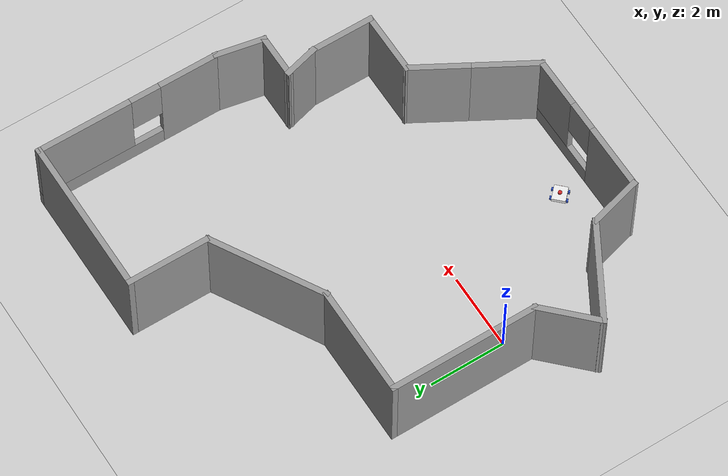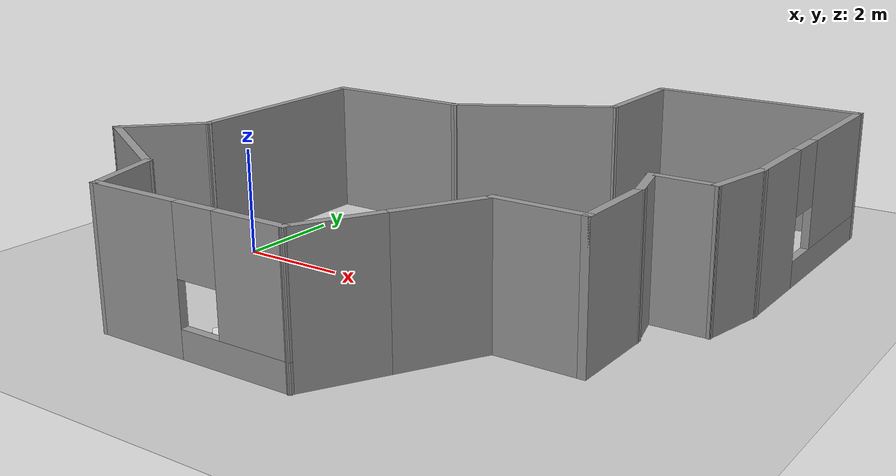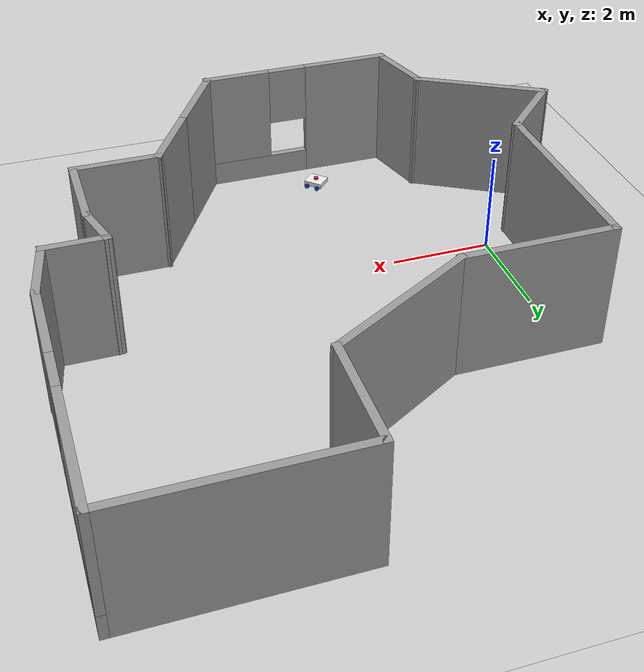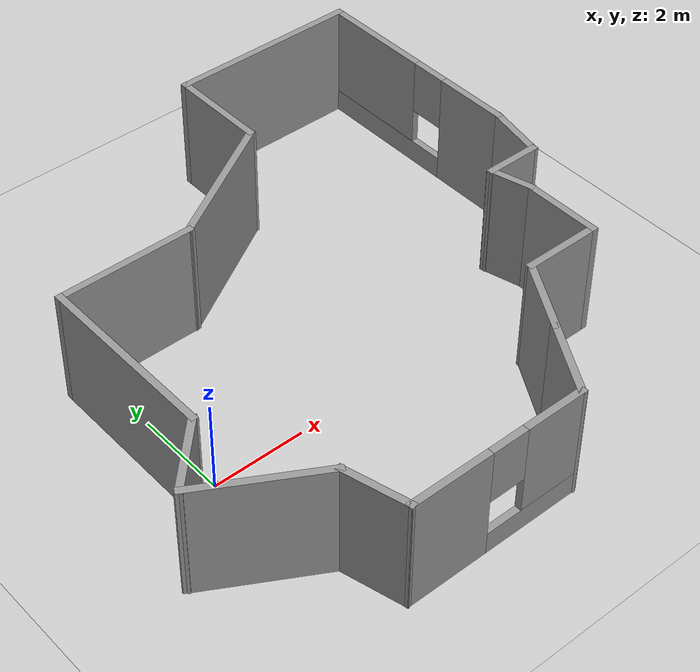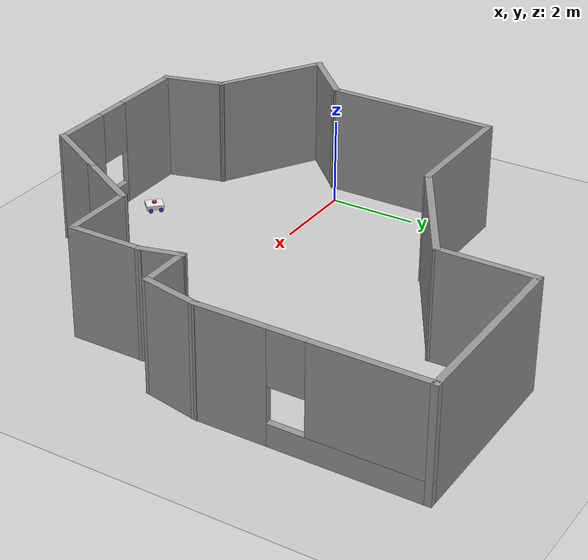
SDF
<sdf version="1.7">
 <world name="default">
  <light name="sun" type="directional">
   <pose>0 0 10 0 -0 0</pose>
   <diffuse>0.8 0.8 0.8 1</diffuse>
   <specular>0.2 0.2 0.2 1</specular>
   <attenuation>
    <range>1000</range>
    <constant>0.9</constant>
    <linear>0.01</linear>
    <quadratic>0.001</quadratic>
   </attenuation>
   <direction>-0.5 0.1 -0.9</direction>
   <spot><inner_angle>0</inner_angle><outer_angle>0</outer_angle><falloff>0</falloff></spot>
  </light>
  <model name="ground_plane">
   <static>1</static>
   <link name="link">
    <collision name="collision">
     <geometry><plane><normal>0 0 1</normal><size>100 100</size></plane></geometry>
     <surface><friction><ode><mu>100</mu><mu2>50</mu2></ode></friction></surface>
    </collision>
    <visual name="visual">
     <cast_shadows>0</cast_shadows>
     <geometry><plane><normal>0 0 1</normal><size>100 100</size></plane></geometry>
     <material>
      <script><uri>file://media/materials/scripts/gazebo.material</uri><name>Gazebo/Grey</name></script>
     </material>
    </visual>
   </link>
  </model>
  <gravity>0 0 -9.8</gravity>
  <magnetic_field>6e-06 2.3e-05 -4.2e-05</magnetic_field>
  <atmosphere type="adiabatic"/>
  <physics type="ode">
   <max_step_size>0.001</max_step_size>
   <real_time_factor>1</real_time_factor>
   <real_time_update_rate>1000</real_time_update_rate>
  </physics>
  <scene><ambient>0.4 0.4 0.4 1</ambient><background>0.7 0.7 0.7 1</background><shadows>1</shadows></scene>
  <spherical_coordinates>
   <surface_model>EARTH_WGS84</surface_model>
   <latitude_deg>0</latitude_deg>
   <longitude_deg>0</longitude_deg>
   <elevation>0</elevation>
   <heading_deg>0</heading_deg>
  </spherical_coordinates>
  <model name="my_bot">
   <link name="base_link">
    <inertial>
     <pose>0.228 0 0.045 0 -0 0</pose>
     <mass>2.5</mass>
     <inertia>
      <ixx>0.0591105</ixx>
      <ixy>0</ixy>
      <ixz>0.0044</ixz>
      <iyy>0.0344858</iyy>
      <iyz>-6.96389e-20</iyz>
      <izz>0.0800463</izz>
     </inertia>
    </inertial>
    <collision name="base_link_fixed_joint_lump__chassis_collision">
     <pose>0.1 0 1 0 -0 0</pose>
     <geometry><box><size>0.4 0.35 0.1</size></box></geometry>
    </collision>
    <collision name="base_link_fixed_joint_lump__laser_frame_collision_1">
     <pose>0.1 0 0.125 0 -0 0</pose>
     <geometry><cylinder><length>0.04</length><radius>0.05</radius></cylinder></geometry>
    </collision>
    <collision name="base_link_fixed_joint_lump__leftf_wheel_collision_2">
     <pose>0.22 0.20416 0 -1.5708 0 0</pose>
     <geometry><cylinder><length>0.04</length><radius>0.05</radius></cylinder></geometry>
     <surface><friction><ode><mu>0.001</mu><mu2>0.001</mu2></ode></friction></surface>
    </collision>
    <collision name="base_link_fixed_joint_lump__rightf_wheel_collision_3">
     <pose>0.22 -0.20416 0 1.5708 -0 0</pose>
     <geometry><cylinder><length>0.04</length><radius>0.05</radius></cylinder></geometry>
     <surface><friction><ode><mu>0.001</mu><mu2>0.001</mu2></ode></friction></surface>
    </collision>
    <visual name="base_link_fixed_joint_lump__chassis_visual">
     <pose>0.1 0 0.05 0 -0 0</pose>
     <geometry><box><size>0.4 0.35 0.1</size></box></geometry>
     <material>
      <script><name>Gazebo/White</name><uri>file://media/materials/scripts/gazebo.material</uri></script>
     </material>
    </visual>
    <visual name="base_link_fixed_joint_lump__camera_link_visual_1">
     <pose>0.31 0 0.07 0 -0 0</pose>
     <geometry><box><size>0.01 0.03 0.03</size></box></geometry>
     <material>
      <script><name>Gazebo/Red</name><uri>file://media/materials/scripts/gazebo.material</uri></script>
     </material>
    </visual>
    <visual name="base_link_fixed_joint_lump__laser_frame_visual_2">
     <pose>0.1 0 0.125 0 -0 0</pose>
     <geometry><cylinder><length>0.04</length><radius>0.05</radius></cylinder></geometry>
     <material>
      <script><name>Gazebo/Red</name><uri>file://media/materials/scripts/gazebo.material</uri></script>
     </material>
    </visual>
    <visual name="base_link_fixed_joint_lump__leftf_wheel_visual_3">
     <pose>0.22 0.20416 0 -1.5708 0 0</pose>
     <geometry><cylinder><length>0.04</length><radius>0.05</radius></cylinder></geometry>
     <material>
      <script><name>Gazebo/Blue</name><uri>file://media/materials/scripts/gazebo.material</uri></script>
     </material>
    </visual>
    <visual name="base_link_fixed_joint_lump__rightf_wheel_visual_4">
     <pose>0.22 -0.20416 0 1.5708 -0 0</pose>
     <geometry><cylinder><length>0.04</length><radius>0.05</radius></cylinder></geometry>
     <material>
      <script><name>Gazebo/Blue</name><uri>file://media/materials/scripts/gazebo.material</uri></script>
     </material>
    </visual>
    <sensor name="camera" type="camera">
     <visualize>1</visualize>
     <update_rate>10</update_rate>
     <camera>
      <horizontal_fov>1.089</horizontal_fov>
      <image><format>R8G8B8</format><width>640</width><height>480</height></image>
      <clip><near>0.05</near><far>8</far></clip>
     </camera>
     <plugin name="camera_controller" filename="libgazebo_ros_camera.so">
      <frame_name>camera_link_optical</frame_name>
     </plugin>
     <pose>0.31 0 0.07 0 -0 0</pose>
    </sensor>
    <sensor name="laser" type="ray">
     <visualize>0</visualize>
     <update_rate>10</update_rate>
     <ray>
      <scan>
       <horizontal>
        <samples>360</samples>
        <min_angle>-3.14</min_angle>
        <max_angle>3.14</max_angle>
        <resolution>1</resolution>
       </horizontal>
       <vertical><samples>1</samples><min_angle>0</min_angle><max_angle>0</max_angle></vertical>
      </scan>
      <range><min>0.3</min><max>12</max></range>
     </ray>
     <plugin name="laser_controller" filename="libgazebo_ros_ray_sensor.so">
      <ros><argument>~/out:=scan</argument></ros>
      <output_type>sensor_msgs/LaserScan</output_type>
      <frame_name>laser_frame</frame_name>
     </plugin>
     <pose>0.1 0 0.125 0 -0 0</pose>
    </sensor>
   </link>
   <joint name="left_wheel_joint" type="revolute">
    <pose relative_to="base_link">-0.02 0.20416 0 -1.5708 0 0</pose>
    <parent>base_link</parent>
    <child>left_wheel</child>
    <axis>
     <xyz>0 0 1</xyz>
     <limit><lower>-1e+16</lower><upper>1e+16</upper></limit>
     <dynamics><spring_reference>0</spring_reference><spring_stiffness>0</spring_stiffness></dynamics>
    </axis>
   </joint>
   <link name="left_wheel">
    <pose relative_to="left_wheel_joint">0 0 0 0 -0 0</pose>
    <inertial>
     <mass>0.5</mass>
     <inertia>
      <ixx>0.000379167</ixx>
      <ixy>0</ixy>
      <ixz>0</ixz>
      <iyy>0.000379167</iyy>
      <iyz>0</iyz>
      <izz>0.000625</izz>
     </inertia>
    </inertial>
    <collision name="left_wheel_collision">
     <geometry><cylinder><length>0.04</length><radius>0.05</radius></cylinder></geometry>
    </collision>
    <visual name="left_wheel_visual">
     <geometry><cylinder><length>0.04</length><radius>0.05</radius></cylinder></geometry>
     <material>
      <script><name>Gazebo/Blue</name><uri>file://media/materials/scripts/gazebo.material</uri></script>
     </material>
    </visual>
   </link>
   <joint name="right_wheel_joint" type="revolute">
    <pose relative_to="base_link">-0.02 -0.20416 0 1.5708 -0 0</pose>
    <parent>base_link</parent>
    <child>right_wheel</child>
    <axis>
     <xyz>0 0 -1</xyz>
     <limit><lower>-1e+16</lower><upper>1e+16</upper></limit>
     <dynamics><spring_reference>0</spring_reference><spring_stiffness>0</spring_stiffness></dynamics>
    </axis>
   </joint>
   <link name="right_wheel">
    <pose relative_to="right_wheel_joint">0 0 0 0 -0 0</pose>
    <inertial>
     <mass>0.5</mass>
     <inertia>
      <ixx>0.000379167</ixx>
      <ixy>0</ixy>
      <ixz>0</ixz>
      <iyy>0.000379167</iyy>
      <iyz>0</iyz>
      <izz>0.000625</izz>
     </inertia>
    </inertial>
    <collision name="right_wheel_collision">
     <geometry><cylinder><length>0.04</length><radius>0.05</radius></cylinder></geometry>
    </collision>
    <visual name="right_wheel_visual">
     <geometry><cylinder><length>0.04</length><radius>0.05</radius></cylinder></geometry>
     <material>
      <script><name>Gazebo/Blue</name><uri>file://media/materials/scripts/gazebo.material</uri></script>
     </material>
    </visual>
   </link>
   <plugin name="diff_drive" filename="libgazebo_ros_diff_drive.so">
    <left_joint>left_wheel_joint</left_joint>
    <right_joint>right_wheel_joint</right_joint>
    <wheel_separation>0.4</wheel_separation>
    <wheel_diameter>0.1</wheel_diameter>
    <max_wheel_torque>200</max_wheel_torque>
    <max_wheel_acceleration>10.0</max_wheel_acceleration>
    <odometry_frame>odom</odometry_frame>
    <robot_base_frame>base_link</robot_base_frame>
    <publish_odom>1</publish_odom>
    <publish_odom_tf>1</publish_odom_tf>
    <publish_wheel_tf>1</publish_wheel_tf>
   </plugin>
   <frame name="camera_optical_joint" attached_to="camera_link"><pose>0 0 0 -1.5708 -0 -1.5708</pose></frame>
   <frame name="camera_link_optical" attached_to="camera_optical_joint"/>
   <frame name="camera_joint" attached_to="chassis"><pose>0.41 0 0.07 0 -0 0</pose></frame>
   <frame name="camera_link" attached_to="camera_joint"/>
   <frame name="laser_joint" attached_to="chassis"><pose>0.2 0 0.125 0 -0 0</pose></frame>
   <frame name="laser_frame" attached_to="laser_joint"/>
   <frame name="chassis_joint" attached_to="base_link"><pose>-0.1 0 0 0 -0 0</pose></frame>
   <frame name="chassis" attached_to="chassis_joint"/>
   <frame name="leftf_wheel_joint" attached_to="base_link"><pose>0.22 0.20416 0 -1.5708 0 0</pose></frame>
   <frame name="leftf_wheel" attached_to="leftf_wheel_joint"/>
   <frame name="rightf_wheel_joint" attached_to="base_link"><pose>0.22 -0.20416 0 1.5708 -0 0</pose></frame>
   <frame name="rightf_wheel" attached_to="rightf_wheel_joint"/>
   <pose>2.50392 -3.25319 0.049991 -0 -1.1e-05 -0.774254</pose>
  </model>
  <model name="Untitled">
   <pose>3.62125 1.49147 0 0 -0 0</pose>
   <link name="Wall_29">
    <pose>5.39202 3.20641 0 0 -0 1.5708</pose>
    <visual name="Wall_29_Visual_0">
     <pose>-1.67661 0 1.25 0 -0 0</pose>
     <geometry><box><size>1.64678 0.15 2.5</size></box></geometry>
     <material>
      <script><uri>file://media/materials/scripts/gazebo.material</uri><name>Gazebo/Grey</name></script>
      <ambient>1 1 1 1</ambient>
     </material>
     <meta><layer>0</layer></meta>
    </visual>
    <collision name="Wall_29_Collision_0">
     <geometry><box><size>1.64678 0.15 2.5</size></box></geometry>
     <pose>-1.67661 0 1.25 0 -0 0</pose>
    </collision>
    <visual name="Wall_29_Visual_1">
     <pose>0.823389 0 0.25 0 -0 0</pose>
     <geometry><box><size>3.35322 0.15 0.5</size></box></geometry>
     <material>
      <script><uri>file://media/materials/scripts/gazebo.material</uri><name>Gazebo/Grey</name></script>
      <ambient>1 1 1 1</ambient>
     </material>
     <meta><layer>0</layer></meta>
    </visual>
    <collision name="Wall_29_Collision_1">
     <geometry><box><size>3.35322 0.15 0.5</size></box></geometry>
     <pose>0.823389 0 0.25 0 -0 0</pose>
    </collision>
    <visual name="Wall_29_Visual_2">
     <pose>1.22339 0 1.5 0 -0 0</pose>
     <geometry><box><size>2.55322 0.15 2</size></box></geometry>
     <material>
      <script><uri>file://media/materials/scripts/gazebo.material</uri><name>Gazebo/Grey</name></script>
      <ambient>1 1 1 1</ambient>
     </material>
     <meta><layer>0</layer></meta>
    </visual>
    <collision name="Wall_29_Collision_2">
     <geometry><box><size>2.55322 0.15 2</size></box></geometry>
     <pose>1.22339 0 1.5 0 -0 0</pose>
    </collision>
    <visual name="Wall_29_Visual_3">
     <pose>-0.453222 0 1.9 0 -0 0</pose>
     <geometry><box><size>0.8 0.15 1.2</size></box></geometry>
     <material>
      <script><uri>file://media/materials/scripts/gazebo.material</uri><name>Gazebo/Grey</name></script>
      <ambient>1 1 1 1</ambient>
     </material>
     <meta><layer>0</layer></meta>
    </visual>
    <collision name="Wall_29_Collision_3">
     <geometry><box><size>0.8 0.15 1.2</size></box></geometry>
     <pose>-0.453222 0 1.9 0 -0 0</pose>
    </collision>
   </link>
   <link name="Wall_30">
    <collision name="Wall_30_Collision">
     <geometry><box><size>4.25 0.15 2.5</size></box></geometry>
     <pose>0 0 1.25 0 -0 0</pose>
    </collision>
    <visual name="Wall_30_Visual">
     <pose>0 0 1.25 0 -0 0</pose>
     <geometry><box><size>4.25 0.15 2.5</size></box></geometry>
     <material>
      <script><uri>file://media/materials/scripts/gazebo.material</uri><name>Gazebo/Grey</name></script>
      <ambient>1 1 1 1</ambient>
     </material>
     <meta><layer>0</layer></meta>
    </visual>
    <pose>3.34202 5.63141 0 0 -0 3.14159</pose>
   </link>
   <link name="Wall_31">
    <collision name="Wall_31_Collision">
     <geometry><box><size>2.25 0.15 2.5</size></box></geometry>
     <pose>0 0 1.25 0 -0 0</pose>
    </collision>
    <visual name="Wall_31_Visual">
     <pose>0 0 1.25 0 -0 0</pose>
     <geometry><box><size>2.25 0.15 2.5</size></box></geometry>
     <material>
      <script><uri>file://media/materials/scripts/gazebo.material</uri><name>Gazebo/Grey</name></script>
      <ambient>1 1 1 1</ambient>
     </material>
     <meta><layer>0</layer></meta>
    </visual>
    <pose>1.29202 4.58141 0 0 -0 -1.5708</pose>
   </link>
   <link name="Wall_32">
    <collision name="Wall_32_Collision">
     <geometry><box><size>3.25 0.15 2.5</size></box></geometry>
     <pose>0 0 1.25 0 -0 0</pose>
    </collision>
    <visual name="Wall_32_Visual">
     <pose>0 0 1.25 0 -0 0</pose>
     <geometry><box><size>3.25 0.15 2.5</size></box></geometry>
     <material>
      <script><uri>file://media/materials/scripts/gazebo.material</uri><name>Gazebo/Grey</name></script>
      <ambient>1 1 1 1</ambient>
     </material>
     <meta><layer>0</layer></meta>
    </visual>
    <pose>-0.050321 2.75641 0 0 -0 -2.61799</pose>
   </link>
   <link name="Wall_33">
    <collision name="Wall_33_Collision">
     <geometry><box><size>3 0.15 2.5</size></box></geometry>
     <pose>0 0 1.25 0 -0 0</pose>
    </collision>
    <visual name="Wall_33_Visual">
     <pose>0 0 1.25 0 -0 0</pose>
     <geometry><box><size>3 0.15 2.5</size></box></geometry>
     <material>
      <script><uri>file://media/materials/scripts/gazebo.material</uri><name>Gazebo/Grey</name></script>
      <ambient>1 1 1 1</ambient>
     </material>
     <meta><layer>0</layer></meta>
    </visual>
    <pose>-2.81766 1.98141 0 0 -0 3.14159</pose>
   </link>
   <link name="Wall_34">
    <collision name="Wall_34_Collision">
     <geometry><box><size>4 0.15 2.5</size></box></geometry>
     <pose>0 0 1.25 0 -0 0</pose>
    </collision>
    <visual name="Wall_34_Visual">
     <pose>0 0 1.25 0 -0 0</pose>
     <geometry><box><size>4 0.15 2.5</size></box></geometry>
     <material>
      <script><uri>file://media/materials/scripts/gazebo.material</uri><name>Gazebo/Grey</name></script>
      <ambient>1 1 1 1</ambient>
     </material>
     <meta><layer>0</layer></meta>
    </visual>
    <pose>-4.24266 0.056411 0 0 -0 -1.5708</pose>
   </link>
   <link name="Wall_35">
    <collision name="Wall_35_Collision">
     <geometry><box><size>1.75 0.15 2.5</size></box></geometry>
     <pose>0 0 1.25 0 -0 0</pose>
    </collision>
    <visual name="Wall_35_Visual">
     <pose>0 0 1.25 0 -0 0</pose>
     <geometry><box><size>1.75 0.15 2.5</size></box></geometry>
     <material>
      <script><uri>file://media/materials/scripts/gazebo.material</uri><name>Gazebo/Grey</name></script>
      <ambient>1 1 1 1</ambient>
     </material>
     <meta><layer>0</layer></meta>
    </visual>
    <pose>-4.80835 -2.43427 0 0 -0 -2.35619</pose>
   </link>
   <link name="Wall_36">
    <collision name="Wall_36_Collision">
     <geometry><box><size>2.75 0.15 2.5</size></box></geometry>
     <pose>0 0 1.25 0 -0 0</pose>
    </collision>
    <visual name="Wall_36_Visual">
     <pose>0 0 1.25 0 -0 0</pose>
     <geometry><box><size>2.75 0.15 2.5</size></box></geometry>
     <material>
      <script><uri>file://media/materials/scripts/gazebo.material</uri><name>Gazebo/Grey</name></script>
      <ambient>1 1 1 1</ambient>
     </material>
     <meta><layer>0</layer></meta>
    </visual>
    <pose>-4.2482 -3.64996 0 0 -0 -0.523599</pose>
   </link>
   <link name="Wall_37">
    <collision name="Wall_37_Collision">
     <geometry><box><size>1.5 0.15 2.5</size></box></geometry>
     <pose>0 0 1.25 0 -0 0</pose>
    </collision>
    <visual name="Wall_37_Visual">
     <pose>0 0 1.25 0 -0 0</pose>
     <geometry><box><size>1.5 0.15 2.5</size></box></geometry>
     <material>
      <script><uri>file://media/materials/scripts/gazebo.material</uri><name>Gazebo/Grey</name></script>
      <ambient>1 1 1 1</ambient>
     </material>
     <meta><layer>0</layer></meta>
    </visual>
    <pose>-2.94766 -4.95196 0 0 -0 -1.309</pose>
   </link>
   <link name="Wall_38">
    <pose>-0.84796 -5.60396 0 0 -0 0</pose>
    <visual name="Wall_38_Visual_0">
     <pose>-1.0959 0 1.25 0 -0 0</pose>
     <geometry><box><size>1.80819 0.15 2.5</size></box></geometry>
     <material>
      <script><uri>file://media/materials/scripts/gazebo.material</uri><name>Gazebo/Grey</name></script>
      <ambient>1 1 1 1</ambient>
     </material>
     <meta><layer>0</layer></meta>
    </visual>
    <collision name="Wall_38_Collision_0">
     <geometry><box><size>1.80819 0.15 2.5</size></box></geometry>
     <pose>-1.0959 0 1.25 0 -0 0</pose>
    </collision>
    <visual name="Wall_38_Visual_1">
     <pose>0.904097 0 0.25 0 -0 0</pose>
     <geometry><box><size>2.19181 0.15 0.5</size></box></geometry>
     <material>
      <script><uri>file://media/materials/scripts/gazebo.material</uri><name>Gazebo/Grey</name></script>
      <ambient>1 1 1 1</ambient>
     </material>
     <meta><layer>0</layer></meta>
    </visual>
    <collision name="Wall_38_Collision_1">
     <geometry><box><size>2.19181 0.15 0.5</size></box></geometry>
     <pose>0.904097 0 0.25 0 -0 0</pose>
    </collision>
    <visual name="Wall_38_Visual_2">
     <pose>1.3041 0 1.5 0 -0 0</pose>
     <geometry><box><size>1.3918 0.15 2</size></box></geometry>
     <material>
      <script><uri>file://media/materials/scripts/gazebo.material</uri><name>Gazebo/Grey</name></script>
      <ambient>1 1 1 1</ambient>
     </material>
     <meta><layer>0</layer></meta>
    </visual>
    <collision name="Wall_38_Collision_2">
     <geometry><box><size>1.3918 0.15 2</size></box></geometry>
     <pose>1.3041 0 1.5 0 -0 0</pose>
    </collision>
    <visual name="Wall_38_Visual_3">
     <pose>0.208195 0 1.9 0 -0 0</pose>
     <geometry><box><size>0.8 0.15 1.2</size></box></geometry>
     <material>
      <script><uri>file://media/materials/scripts/gazebo.material</uri><name>Gazebo/Grey</name></script>
      <ambient>1 1 1 1</ambient>
     </material>
     <meta><layer>0</layer></meta>
    </visual>
    <collision name="Wall_38_Collision_3">
     <geometry><box><size>0.8 0.15 1.2</size></box></geometry>
     <pose>0.208195 0 1.9 0 -0 0</pose>
    </collision>
   </link>
   <link name="Wall_39">
    <collision name="Wall_39_Collision">
     <geometry><box><size>1.75 0.15 2.5</size></box></geometry>
     <pose>0 0 1.25 0 -0 0</pose>
    </collision>
    <visual name="Wall_39_Visual">
     <pose>0 0 1.25 0 -0 0</pose>
     <geometry><box><size>1.75 0.15 2.5</size></box></geometry>
     <material>
      <script><uri>file://media/materials/scripts/gazebo.material</uri><name>Gazebo/Grey</name></script>
      <ambient>1 1 1 1</ambient>
     </material>
     <meta><layer>0</layer></meta>
    </visual>
    <pose>1.47704 -4.91114 0 0 -0 1.0472</pose>
   </link>
   <link name="Wall_40">
    <collision name="Wall_40_Collision">
     <geometry><box><size>1.75 0.15 2.5</size></box></geometry>
     <pose>0 0 1.25 0 -0 0</pose>
    </collision>
    <visual name="Wall_40_Visual">
     <pose>0 0 1.25 0 -0 0</pose>
     <geometry><box><size>1.75 0.15 2.5</size></box></geometry>
     <material>
      <script><uri>file://media/materials/scripts/gazebo.material</uri><name>Gazebo/Grey</name></script>
      <ambient>1 1 1 1</ambient>
     </material>
     <meta><layer>0</layer></meta>
    </visual>
    <pose>2.27704 -3.5255 0 0 -0 1.0472</pose>
   </link>
   <link name="Wall_41">
    <collision name="Wall_41_Collision">
     <geometry><box><size>1.75 0.15 2.5</size></box></geometry>
     <pose>0 0 1.25 0 -0 0</pose>
    </collision>
    <visual name="Wall_41_Visual">
     <pose>0 0 1.25 0 -0 0</pose>
     <geometry><box><size>1.75 0.15 2.5</size></box></geometry>
     <material>
      <script><uri>file://media/materials/scripts/gazebo.material</uri><name>Gazebo/Grey</name></script>
      <ambient>1 1 1 1</ambient>
     </material>
     <meta><layer>0</layer></meta>
    </visual>
    <pose>3.47704 -2.83268 0 0 -0 0</pose>
   </link>
   <link name="Wall_42">
    <collision name="Wall_42_Collision">
     <geometry><box><size>1.75 0.15 2.5</size></box></geometry>
     <pose>0 0 1.25 0 -0 0</pose>
    </collision>
    <visual name="Wall_42_Visual">
     <pose>0 0 1.25 0 -0 0</pose>
     <geometry><box><size>1.75 0.15 2.5</size></box></geometry>
     <material>
      <script><uri>file://media/materials/scripts/gazebo.material</uri><name>Gazebo/Grey</name></script>
      <ambient>1 1 1 1</ambient>
     </material>
     <meta><layer>0</layer></meta>
    </visual>
    <pose>4.27704 -2.03268 0 0 -0 1.5708</pose>
   </link>
   <link name="Wall_43">
    <collision name="Wall_43_Collision">
     <geometry><box><size>1 0.15 2.5</size></box></geometry>
     <pose>0 0 1.25 0 -0 0</pose>
    </collision>
    <visual name="Wall_43_Visual">
     <pose>0 0 1.25 0 -0 0</pose>
     <geometry><box><size>1 0.15 2.5</size></box></geometry>
     <material>
      <script><uri>file://media/materials/scripts/gazebo.material</uri><name>Gazebo/Grey</name></script>
      <ambient>1 1 1 1</ambient>
     </material>
     <meta><layer>0</layer></meta>
    </visual>
    <pose>4.16704 -0.82216 0 0 -0 1.8326</pose>
   </link>
   <link name="Wall_44">
    <collision name="Wall_44_Collision">
     <geometry><box><size>1.25 0.15 2.5</size></box></geometry>
     <pose>0 0 1.25 0 -0 0</pose>
    </collision>
    <visual name="Wall_44_Visual">
     <pose>0 0 1.25 0 -0 0</pose>
     <geometry><box><size>1.25 0.15 2.5</size></box></geometry>
     <material>
      <script><uri>file://media/materials/scripts/gazebo.material</uri><name>Gazebo/Grey</name></script>
      <ambient>1 1 1 1</ambient>
     </material>
     <meta><layer>0</layer></meta>
    </visual>
    <pose>4.60704 -0.411641 0 0 -0 0</pose>
   </link>
   <link name="Wall_45">
    <collision name="Wall_45_Collision">
     <geometry><box><size>1.36597 0.15 2.5</size></box></geometry>
     <pose>0 0 1.25 0 -0 0</pose>
    </collision>
    <visual name="Wall_45_Visual">
     <pose>0 0 1.25 0 -0 0</pose>
     <geometry><box><size>1.36597 0.15 2.5</size></box></geometry>
     <material>
      <script><uri>file://media/materials/scripts/gazebo.material</uri><name>Gazebo/Grey</name></script>
      <ambient>1 1 1 1</ambient>
     </material>
     <meta><layer>0</layer></meta>
    </visual>
    <pose>5.27453 0.184885 0 0 -0 1.37633</pose>
   </link>
   <static>1</static>
  </model>
 </world>
</sdf>
